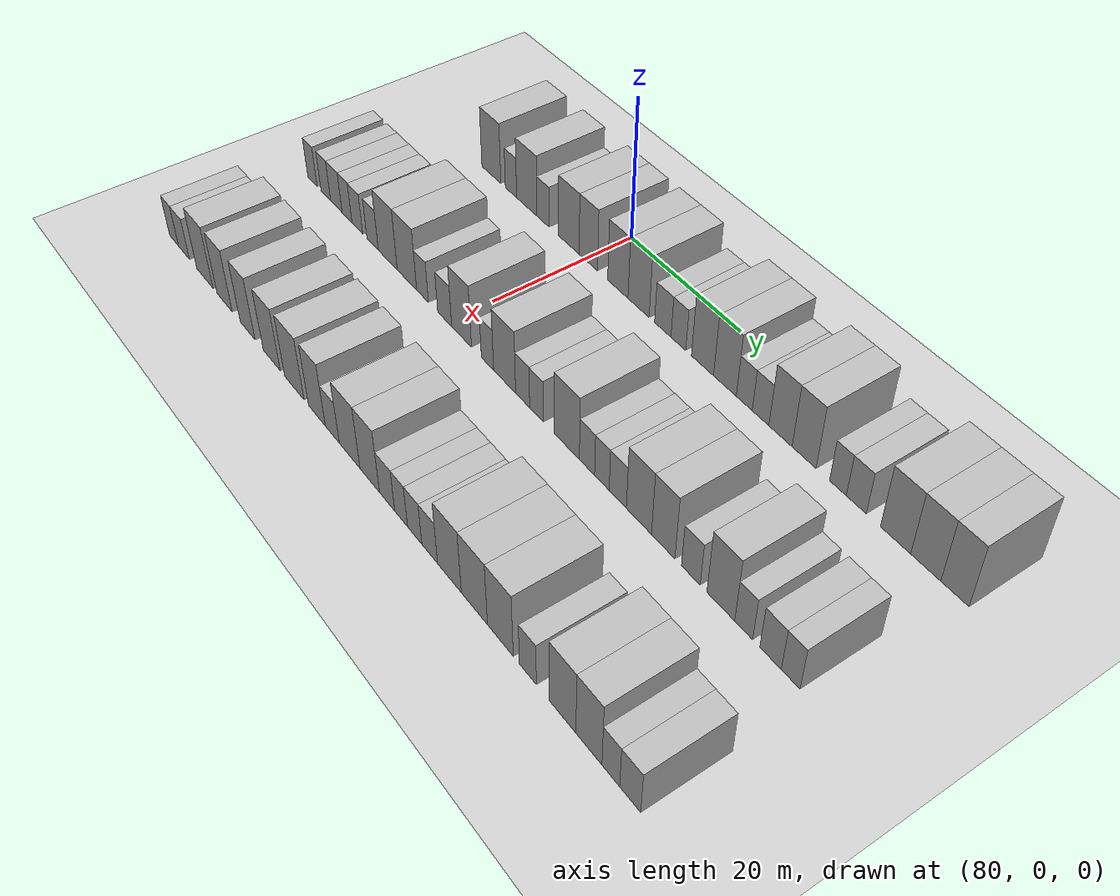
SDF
<sdf version="1.6">
 <world name="default">
  <include>
   <name>ground_plane_2</name>
   <uri>model://HANNAS_ground_plane</uri>
   <pose>100 0 0  0 0 0</pose>
  </include>
  <model name="building_604">
   <static>1</static>
   <pose>82.0000 -20.0142 0 0.000000 0.000000 0.000000</pose>
   <link name="link">
    <pose>0 0 4.50 0 0 0</pose>
    <collision name="collision"><geometry><box><size>10.0000 4.3023 9.0000</size></box></geometry></collision>
    <visual name="visual">
     <cast_shadows>0</cast_shadows>
     <geometry><box><size>10.0000 4.3023 9.0000</size></box></geometry>
     <material>
      <script>
       <uri>model://HANNAS_wall/materials/scripts</uri>
       <uri>model://HANNAS_wall/materials/textures</uri>
       <name>vrc/HANNAS_wall</name>
      </script>
     </material>
    </visual>
   </link>
  </model>
  <model name="building_605">
   <static>1</static>
   <pose>82.0000 -15.6090 0 0.000000 0.000000 0.000000</pose>
   <link name="link">
    <pose>0 0 3.00 0 0 0</pose>
    <collision name="collision"><geometry><box><size>10.0000 2.5079 6.0000</size></box></geometry></collision>
    <visual name="visual">
     <cast_shadows>0</cast_shadows>
     <geometry><box><size>10.0000 2.5079 6.0000</size></box></geometry>
     <material>
      <script>
       <uri>model://HANNAS_wall/materials/scripts</uri>
       <uri>model://HANNAS_wall/materials/textures</uri>
       <name>vrc/HANNAS_wall</name>
      </script>
     </material>
    </visual>
   </link>
  </model>
  <model name="building_606">
   <static>1</static>
   <pose>82.0000 -12.1542 0 0.000000 0.000000 0.000000</pose>
   <link name="link">
    <pose>0 0 4.50 0 0 0</pose>
    <collision name="collision"><geometry><box><size>10.0000 4.4016 9.0000</size></box></geometry></collision>
    <visual name="visual">
     <cast_shadows>0</cast_shadows>
     <geometry><box><size>10.0000 4.4016 9.0000</size></box></geometry>
     <material>
      <script>
       <uri>model://HANNAS_wall/materials/scripts</uri>
       <uri>model://HANNAS_wall/materials/textures</uri>
       <name>vrc/HANNAS_wall</name>
      </script>
     </material>
    </visual>
   </link>
  </model>
  <model name="building_607">
   <static>1</static>
   <pose>82.0000 -8.6694 0 0.000000 0.000000 0.000000</pose>
   <link name="link">
    <pose>0 0 3.00 0 0 0</pose>
    <collision name="collision"><geometry><box><size>10.0000 2.5681 6.0000</size></box></geometry></collision>
    <visual name="visual">
     <cast_shadows>0</cast_shadows>
     <geometry><box><size>10.0000 2.5681 6.0000</size></box></geometry>
     <material>
      <script>
       <uri>model://HANNAS_wall/materials/scripts</uri>
       <uri>model://HANNAS_wall/materials/textures</uri>
       <name>vrc/HANNAS_wall</name>
      </script>
     </material>
    </visual>
   </link>
  </model>
  <model name="building_608">
   <static>1</static>
   <pose>82.0000 -3.2943 0 0.000000 0.000000 0.000000</pose>
   <link name="link">
    <pose>0 0 4.50 0 0 0</pose>
    <collision name="collision"><geometry><box><size>10.0000 4.1821 9.0000</size></box></geometry></collision>
    <visual name="visual">
     <cast_shadows>0</cast_shadows>
     <geometry><box><size>10.0000 4.1821 9.0000</size></box></geometry>
     <material>
      <script>
       <uri>model://HANNAS_wall/materials/scripts</uri>
       <uri>model://HANNAS_wall/materials/textures</uri>
       <name>vrc/HANNAS_wall</name>
      </script>
     </material>
    </visual>
   </link>
  </model>
  <model name="building_609">
   <static>1</static>
   <pose>82.0000 0.6247 0 0.000000 0.000000 0.000000</pose>
   <link name="link">
    <pose>0 0 4.50 0 0 0</pose>
    <collision name="collision"><geometry><box><size>10.0000 3.6558 9.0000</size></box></geometry></collision>
    <visual name="visual">
     <cast_shadows>0</cast_shadows>
     <geometry><box><size>10.0000 3.6558 9.0000</size></box></geometry>
     <material>
      <script>
       <uri>model://HANNAS_wall/materials/scripts</uri>
       <uri>model://HANNAS_wall/materials/textures</uri>
       <name>vrc/HANNAS_wall</name>
      </script>
     </material>
    </visual>
   </link>
  </model>
  <model name="building_610">
   <static>1</static>
   <pose>82.0000 6.4004 0 0.000000 0.000000 0.000000</pose>
   <link name="link">
    <pose>0 0 4.50 0 0 0</pose>
    <collision name="collision"><geometry><box><size>10.0000 3.8955 9.0000</size></box></geometry></collision>
    <visual name="visual">
     <cast_shadows>0</cast_shadows>
     <geometry><box><size>10.0000 3.8955 9.0000</size></box></geometry>
     <material>
      <script>
       <uri>model://HANNAS_wall/materials/scripts</uri>
       <uri>model://HANNAS_wall/materials/textures</uri>
       <name>vrc/HANNAS_wall</name>
      </script>
     </material>
    </visual>
   </link>
  </model>
  <model name="building_611">
   <static>1</static>
   <pose>82.0000 10.3251 0 0.000000 0.000000 0.000000</pose>
   <link name="link">
    <pose>0 0 4.50 0 0 0</pose>
    <collision name="collision"><geometry><box><size>10.0000 3.9539 9.0000</size></box></geometry></collision>
    <visual name="visual">
     <cast_shadows>0</cast_shadows>
     <geometry><box><size>10.0000 3.9539 9.0000</size></box></geometry>
     <material>
      <script>
       <uri>model://HANNAS_wall/materials/scripts</uri>
       <uri>model://HANNAS_wall/materials/textures</uri>
       <name>vrc/HANNAS_wall</name>
      </script>
     </material>
    </visual>
   </link>
  </model>
  <model name="building_612">
   <static>1</static>
   <pose>82.0000 14.7851 0 0.000000 0.000000 0.000000</pose>
   <link name="link">
    <pose>0 0 3.00 0 0 0</pose>
    <collision name="collision"><geometry><box><size>10.0000 2.9661 6.0000</size></box></geometry></collision>
    <visual name="visual">
     <cast_shadows>0</cast_shadows>
     <geometry><box><size>10.0000 2.9661 6.0000</size></box></geometry>
     <material>
      <script>
       <uri>model://HANNAS_wall/materials/scripts</uri>
       <uri>model://HANNAS_wall/materials/textures</uri>
       <name>vrc/HANNAS_wall</name>
      </script>
     </material>
    </visual>
   </link>
  </model>
  <model name="building_613">
   <static>1</static>
   <pose>82.0000 17.5795 0 0.000000 0.000000 0.000000</pose>
   <link name="link">
    <pose>0 0 3.00 0 0 0</pose>
    <collision name="collision"><geometry><box><size>10.0000 2.6227 6.0000</size></box></geometry></collision>
    <visual name="visual">
     <cast_shadows>0</cast_shadows>
     <geometry><box><size>10.0000 2.6227 6.0000</size></box></geometry>
     <material>
      <script>
       <uri>model://HANNAS_wall/materials/scripts</uri>
       <uri>model://HANNAS_wall/materials/textures</uri>
       <name>vrc/HANNAS_wall</name>
      </script>
     </material>
    </visual>
   </link>
  </model>
  <model name="building_614">
   <static>1</static>
   <pose>82.0000 21.7921 0 0.000000 0.000000 0.000000</pose>
   <link name="link">
    <pose>0 0 4.50 0 0 0</pose>
    <collision name="collision"><geometry><box><size>10.0000 3.8025 9.0000</size></box></geometry></collision>
    <visual name="visual">
     <cast_shadows>0</cast_shadows>
     <geometry><box><size>10.0000 3.8025 9.0000</size></box></geometry>
     <material>
      <script>
       <uri>model://HANNAS_wall/materials/scripts</uri>
       <uri>model://HANNAS_wall/materials/textures</uri>
       <name>vrc/HANNAS_wall</name>
      </script>
     </material>
    </visual>
   </link>
  </model>
  <model name="building_615">
   <static>1</static>
   <pose>82.0000 25.6045 0 0.000000 0.000000 0.000000</pose>
   <link name="link">
    <pose>0 0 4.50 0 0 0</pose>
    <collision name="collision"><geometry><box><size>10.0000 3.8221 9.0000</size></box></geometry></collision>
    <visual name="visual">
     <cast_shadows>0</cast_shadows>
     <geometry><box><size>10.0000 3.8221 9.0000</size></box></geometry>
     <material>
      <script>
       <uri>model://HANNAS_wall/materials/scripts</uri>
       <uri>model://HANNAS_wall/materials/textures</uri>
       <name>vrc/HANNAS_wall</name>
      </script>
     </material>
    </visual>
   </link>
  </model>
  <model name="building_616">
   <static>1</static>
   <pose>82.0000 28.8261 0 0.000000 0.000000 0.000000</pose>
   <link name="link">
    <pose>0 0 3.00 0 0 0</pose>
    <collision name="collision"><geometry><box><size>10.0000 2.6213 6.0000</size></box></geometry></collision>
    <visual name="visual">
     <cast_shadows>0</cast_shadows>
     <geometry><box><size>10.0000 2.6213 6.0000</size></box></geometry>
     <material>
      <script>
       <uri>model://HANNAS_wall/materials/scripts</uri>
       <uri>model://HANNAS_wall/materials/textures</uri>
       <name>vrc/HANNAS_wall</name>
      </script>
     </material>
    </visual>
   </link>
  </model>
  <model name="building_617">
   <static>1</static>
   <pose>82.0000 31.4690 0 0.000000 0.000000 0.000000</pose>
   <link name="link">
    <pose>0 0 3.00 0 0 0</pose>
    <collision name="collision"><geometry><box><size>10.0000 2.6644 6.0000</size></box></geometry></collision>
    <visual name="visual">
     <cast_shadows>0</cast_shadows>
     <geometry><box><size>10.0000 2.6644 6.0000</size></box></geometry>
     <material>
      <script>
       <uri>model://HANNAS_wall/materials/scripts</uri>
       <uri>model://HANNAS_wall/materials/textures</uri>
       <name>vrc/HANNAS_wall</name>
      </script>
     </material>
    </visual>
   </link>
  </model>
  <model name="building_618">
   <static>1</static>
   <pose>82.0000 34.6271 0 0.000000 0.000000 0.000000</pose>
   <link name="link">
    <pose>0 0 4.50 0 0 0</pose>
    <collision name="collision"><geometry><box><size>10.0000 3.6517 9.0000</size></box></geometry></collision>
    <visual name="visual">
     <cast_shadows>0</cast_shadows>
     <geometry><box><size>10.0000 3.6517 9.0000</size></box></geometry>
     <material>
      <script>
       <uri>model://HANNAS_wall/materials/scripts</uri>
       <uri>model://HANNAS_wall/materials/textures</uri>
       <name>vrc/HANNAS_wall</name>
      </script>
     </material>
    </visual>
   </link>
  </model>
  <model name="building_619">
   <static>1</static>
   <pose>82.0000 38.2911 0 0.000000 0.000000 0.000000</pose>
   <link name="link">
    <pose>0 0 4.50 0 0 0</pose>
    <collision name="collision"><geometry><box><size>10.0000 3.6763 9.0000</size></box></geometry></collision>
    <visual name="visual">
     <cast_shadows>0</cast_shadows>
     <geometry><box><size>10.0000 3.6763 9.0000</size></box></geometry>
     <material>
      <script>
       <uri>model://HANNAS_wall/materials/scripts</uri>
       <uri>model://HANNAS_wall/materials/textures</uri>
       <name>vrc/HANNAS_wall</name>
      </script>
     </material>
    </visual>
   </link>
  </model>
  <model name="building_620">
   <static>1</static>
   <pose>82.0000 43.3612 0 0.000000 0.000000 0.000000</pose>
   <link name="link">
    <pose>0 0 3.00 0 0 0</pose>
    <collision name="collision"><geometry><box><size>10.0000 2.4638 6.0000</size></box></geometry></collision>
    <visual name="visual">
     <cast_shadows>0</cast_shadows>
     <geometry><box><size>10.0000 2.4638 6.0000</size></box></geometry>
     <material>
      <script>
       <uri>model://HANNAS_wall/materials/scripts</uri>
       <uri>model://HANNAS_wall/materials/textures</uri>
       <name>vrc/HANNAS_wall</name>
      </script>
     </material>
    </visual>
   </link>
  </model>
  <model name="building_621">
   <static>1</static>
   <pose>82.0000 46.0328 0 0.000000 0.000000 0.000000</pose>
   <link name="link">
    <pose>0 0 3.00 0 0 0</pose>
    <collision name="collision"><geometry><box><size>10.0000 2.8796 6.0000</size></box></geometry></collision>
    <visual name="visual">
     <cast_shadows>0</cast_shadows>
     <geometry><box><size>10.0000 2.8796 6.0000</size></box></geometry>
     <material>
      <script>
       <uri>model://HANNAS_wall/materials/scripts</uri>
       <uri>model://HANNAS_wall/materials/textures</uri>
       <name>vrc/HANNAS_wall</name>
      </script>
     </material>
    </visual>
   </link>
  </model>
  <model name="building_622">
   <static>1</static>
   <pose>82.0000 51.5520 0 0.000000 0.000000 0.000000</pose>
   <link name="link">
    <pose>0 0 4.50 0 0 0</pose>
    <collision name="collision"><geometry><box><size>10.0000 4.1588 9.0000</size></box></geometry></collision>
    <visual name="visual">
     <cast_shadows>0</cast_shadows>
     <geometry><box><size>10.0000 4.1588 9.0000</size></box></geometry>
     <material>
      <script>
       <uri>model://HANNAS_wall/materials/scripts</uri>
       <uri>model://HANNAS_wall/materials/textures</uri>
       <name>vrc/HANNAS_wall</name>
      </script>
     </material>
    </visual>
   </link>
  </model>
  <model name="building_623">
   <static>1</static>
   <pose>82.0000 55.6407 0 0.000000 0.000000 0.000000</pose>
   <link name="link">
    <pose>0 0 4.50 0 0 0</pose>
    <collision name="collision"><geometry><box><size>10.0000 4.0185 9.0000</size></box></geometry></collision>
    <visual name="visual">
     <cast_shadows>0</cast_shadows>
     <geometry><box><size>10.0000 4.0185 9.0000</size></box></geometry>
     <material>
      <script>
       <uri>model://HANNAS_wall/materials/scripts</uri>
       <uri>model://HANNAS_wall/materials/textures</uri>
       <name>vrc/HANNAS_wall</name>
      </script>
     </material>
    </visual>
   </link>
  </model>
  <model name="building_624">
   <static>1</static>
   <pose>82.0000 59.4782 0 0.000000 0.000000 0.000000</pose>
   <link name="link">
    <pose>0 0 4.50 0 0 0</pose>
    <collision name="collision"><geometry><box><size>10.0000 3.6566 9.0000</size></box></geometry></collision>
    <visual name="visual">
     <cast_shadows>0</cast_shadows>
     <geometry><box><size>10.0000 3.6566 9.0000</size></box></geometry>
     <material>
      <script>
       <uri>model://HANNAS_wall/materials/scripts</uri>
       <uri>model://HANNAS_wall/materials/textures</uri>
       <name>vrc/HANNAS_wall</name>
      </script>
     </material>
    </visual>
   </link>
  </model>
  <model name="building_777">
   <static>1</static>
   <pose>101.0000 -31.6966 0 0.000000 0.000000 0.000000</pose>
   <link name="link">
    <pose>0 0 3.00 0 0 0</pose>
    <collision name="collision"><geometry><box><size>10.0000 2.4037 6.0000</size></box></geometry></collision>
    <visual name="visual">
     <cast_shadows>0</cast_shadows>
     <geometry><box><size>10.0000 2.4037 6.0000</size></box></geometry>
     <material>
      <script>
       <uri>model://HANNAS_wall/materials/scripts</uri>
       <uri>model://HANNAS_wall/materials/textures</uri>
       <name>vrc/HANNAS_wall</name>
      </script>
     </material>
    </visual>
   </link>
  </model>
  <model name="building_778">
   <static>1</static>
   <pose>101.0000 -28.2840 0 0.000000 0.000000 0.000000</pose>
   <link name="link">
    <pose>0 0 3.00 0 0 0</pose>
    <collision name="collision"><geometry><box><size>10.0000 2.4216 6.0000</size></box></geometry></collision>
    <visual name="visual">
     <cast_shadows>0</cast_shadows>
     <geometry><box><size>10.0000 2.4216 6.0000</size></box></geometry>
     <material>
      <script>
       <uri>model://HANNAS_wall/materials/scripts</uri>
       <uri>model://HANNAS_wall/materials/textures</uri>
       <name>vrc/HANNAS_wall</name>
      </script>
     </material>
    </visual>
   </link>
  </model>
  <model name="building_779">
   <static>1</static>
   <pose>101.0000 -25.6420 0 0.000000 0.000000 0.000000</pose>
   <link name="link">
    <pose>0 0 3.00 0 0 0</pose>
    <collision name="collision"><geometry><box><size>10.0000 2.8623 6.0000</size></box></geometry></collision>
    <visual name="visual">
     <cast_shadows>0</cast_shadows>
     <geometry><box><size>10.0000 2.8623 6.0000</size></box></geometry>
     <material>
      <script>
       <uri>model://HANNAS_wall/materials/scripts</uri>
       <uri>model://HANNAS_wall/materials/textures</uri>
       <name>vrc/HANNAS_wall</name>
      </script>
     </material>
    </visual>
   </link>
  </model>
  <model name="building_780">
   <static>1</static>
   <pose>101.0000 -22.9965 0 0.000000 0.000000 0.000000</pose>
   <link name="link">
    <pose>0 0 3.00 0 0 0</pose>
    <collision name="collision"><geometry><box><size>10.0000 2.4287 6.0000</size></box></geometry></collision>
    <visual name="visual">
     <cast_shadows>0</cast_shadows>
     <geometry><box><size>10.0000 2.4287 6.0000</size></box></geometry>
     <material>
      <script>
       <uri>model://HANNAS_wall/materials/scripts</uri>
       <uri>model://HANNAS_wall/materials/textures</uri>
       <name>vrc/HANNAS_wall</name>
      </script>
     </material>
    </visual>
   </link>
  </model>
  <model name="building_781">
   <static>1</static>
   <pose>101.0000 -20.4840 0 0.000000 0.000000 0.000000</pose>
   <link name="link">
    <pose>0 0 3.00 0 0 0</pose>
    <collision name="collision"><geometry><box><size>10.0000 2.5963 6.0000</size></box></geometry></collision>
    <visual name="visual">
     <cast_shadows>0</cast_shadows>
     <geometry><box><size>10.0000 2.5963 6.0000</size></box></geometry>
     <material>
      <script>
       <uri>model://HANNAS_wall/materials/scripts</uri>
       <uri>model://HANNAS_wall/materials/textures</uri>
       <name>vrc/HANNAS_wall</name>
      </script>
     </material>
    </visual>
   </link>
  </model>
  <model name="building_782">
   <static>1</static>
   <pose>101.0000 -16.8445 0 0.000000 0.000000 0.000000</pose>
   <link name="link">
    <pose>0 0 3.00 0 0 0</pose>
    <collision name="collision"><geometry><box><size>10.0000 2.6827 6.0000</size></box></geometry></collision>
    <visual name="visual">
     <cast_shadows>0</cast_shadows>
     <geometry><box><size>10.0000 2.6827 6.0000</size></box></geometry>
     <material>
      <script>
       <uri>model://HANNAS_wall/materials/scripts</uri>
       <uri>model://HANNAS_wall/materials/textures</uri>
       <name>vrc/HANNAS_wall</name>
      </script>
     </material>
    </visual>
   </link>
  </model>
  <model name="building_783">
   <static>1</static>
   <pose>101.0000 -13.3282 0 0.000000 0.000000 0.000000</pose>
   <link name="link">
    <pose>0 0 4.50 0 0 0</pose>
    <collision name="collision"><geometry><box><size>10.0000 4.3497 9.0000</size></box></geometry></collision>
    <visual name="visual">
     <cast_shadows>0</cast_shadows>
     <geometry><box><size>10.0000 4.3497 9.0000</size></box></geometry>
     <material>
      <script>
       <uri>model://HANNAS_wall/materials/scripts</uri>
       <uri>model://HANNAS_wall/materials/textures</uri>
       <name>vrc/HANNAS_wall</name>
      </script>
     </material>
    </visual>
   </link>
  </model>
  <model name="building_784">
   <static>1</static>
   <pose>101.0000 -8.9768 0 0.000000 0.000000 0.000000</pose>
   <link name="link">
    <pose>0 0 4.50 0 0 0</pose>
    <collision name="collision"><geometry><box><size>10.0000 4.3532 9.0000</size></box></geometry></collision>
    <visual name="visual">
     <cast_shadows>0</cast_shadows>
     <geometry><box><size>10.0000 4.3532 9.0000</size></box></geometry>
     <material>
      <script>
       <uri>model://HANNAS_wall/materials/scripts</uri>
       <uri>model://HANNAS_wall/materials/textures</uri>
       <name>vrc/HANNAS_wall</name>
      </script>
     </material>
    </visual>
   </link>
  </model>
  <model name="building_785">
   <static>1</static>
   <pose>101.0000 -5.5197 0 0.000000 0.000000 0.000000</pose>
   <link name="link">
    <pose>0 0 3.00 0 0 0</pose>
    <collision name="collision"><geometry><box><size>10.0000 2.5610 6.0000</size></box></geometry></collision>
    <visual name="visual">
     <cast_shadows>0</cast_shadows>
     <geometry><box><size>10.0000 2.5610 6.0000</size></box></geometry>
     <material>
      <script>
       <uri>model://HANNAS_wall/materials/scripts</uri>
       <uri>model://HANNAS_wall/materials/textures</uri>
       <name>vrc/HANNAS_wall</name>
      </script>
     </material>
    </visual>
   </link>
  </model>
  <model name="building_786">
   <static>1</static>
   <pose>101.0000 -0.7593 0 0.000000 0.000000 0.000000</pose>
   <link name="link">
    <pose>0 0 3.00 0 0 0</pose>
    <collision name="collision"><geometry><box><size>10.0000 2.9598 6.0000</size></box></geometry></collision>
    <visual name="visual">
     <cast_shadows>0</cast_shadows>
     <geometry><box><size>10.0000 2.9598 6.0000</size></box></geometry>
     <material>
      <script>
       <uri>model://HANNAS_wall/materials/scripts</uri>
       <uri>model://HANNAS_wall/materials/textures</uri>
       <name>vrc/HANNAS_wall</name>
      </script>
     </material>
    </visual>
   </link>
  </model>
  <model name="building_787">
   <static>1</static>
   <pose>101.0000 2.7613 0 0.000000 0.000000 0.000000</pose>
   <link name="link">
    <pose>0 0 4.50 0 0 0</pose>
    <collision name="collision"><geometry><box><size>10.0000 4.0813 9.0000</size></box></geometry></collision>
    <visual name="visual">
     <cast_shadows>0</cast_shadows>
     <geometry><box><size>10.0000 4.0813 9.0000</size></box></geometry>
     <material>
      <script>
       <uri>model://HANNAS_wall/materials/scripts</uri>
       <uri>model://HANNAS_wall/materials/textures</uri>
       <name>vrc/HANNAS_wall</name>
      </script>
     </material>
    </visual>
   </link>
  </model>
  <model name="building_788">
   <static>1</static>
   <pose>101.0000 8.0213 0 0.000000 0.000000 0.000000</pose>
   <link name="link">
    <pose>0 0 3.00 0 0 0</pose>
    <collision name="collision"><geometry><box><size>10.0000 2.4387 6.0000</size></box></geometry></collision>
    <visual name="visual">
     <cast_shadows>0</cast_shadows>
     <geometry><box><size>10.0000 2.4387 6.0000</size></box></geometry>
     <material>
      <script>
       <uri>model://HANNAS_wall/materials/scripts</uri>
       <uri>model://HANNAS_wall/materials/textures</uri>
       <name>vrc/HANNAS_wall</name>
      </script>
     </material>
    </visual>
   </link>
  </model>
  <model name="building_789">
   <static>1</static>
   <pose>101.0000 11.3814 0 0.000000 0.000000 0.000000</pose>
   <link name="link">
    <pose>0 0 4.50 0 0 0</pose>
    <collision name="collision"><geometry><box><size>10.0000 4.2816 9.0000</size></box></geometry></collision>
    <visual name="visual">
     <cast_shadows>0</cast_shadows>
     <geometry><box><size>10.0000 4.2816 9.0000</size></box></geometry>
     <material>
      <script>
       <uri>model://HANNAS_wall/materials/scripts</uri>
       <uri>model://HANNAS_wall/materials/textures</uri>
       <name>vrc/HANNAS_wall</name>
      </script>
     </material>
    </visual>
   </link>
  </model>
  <model name="building_790">
   <static>1</static>
   <pose>101.0000 14.8483 0 0.000000 0.000000 0.000000</pose>
   <link name="link">
    <pose>0 0 3.00 0 0 0</pose>
    <collision name="collision"><geometry><box><size>10.0000 2.6521 6.0000</size></box></geometry></collision>
    <visual name="visual">
     <cast_shadows>0</cast_shadows>
     <geometry><box><size>10.0000 2.6521 6.0000</size></box></geometry>
     <material>
      <script>
       <uri>model://HANNAS_wall/materials/scripts</uri>
       <uri>model://HANNAS_wall/materials/textures</uri>
       <name>vrc/HANNAS_wall</name>
      </script>
     </material>
    </visual>
   </link>
  </model>
  <model name="building_791">
   <static>1</static>
   <pose>101.0000 17.4424 0 0.000000 0.000000 0.000000</pose>
   <link name="link">
    <pose>0 0 3.00 0 0 0</pose>
    <collision name="collision"><geometry><box><size>10.0000 2.5361 6.0000</size></box></geometry></collision>
    <visual name="visual">
     <cast_shadows>0</cast_shadows>
     <geometry><box><size>10.0000 2.5361 6.0000</size></box></geometry>
     <material>
      <script>
       <uri>model://HANNAS_wall/materials/scripts</uri>
       <uri>model://HANNAS_wall/materials/textures</uri>
       <name>vrc/HANNAS_wall</name>
      </script>
     </material>
    </visual>
   </link>
  </model>
  <model name="building_792">
   <static>1</static>
   <pose>101.0000 22.9478 0 0.000000 0.000000 0.000000</pose>
   <link name="link">
    <pose>0 0 4.50 0 0 0</pose>
    <collision name="collision"><geometry><box><size>10.0000 4.4748 9.0000</size></box></geometry></collision>
    <visual name="visual">
     <cast_shadows>0</cast_shadows>
     <geometry><box><size>10.0000 4.4748 9.0000</size></box></geometry>
     <material>
      <script>
       <uri>model://HANNAS_wall/materials/scripts</uri>
       <uri>model://HANNAS_wall/materials/textures</uri>
       <name>vrc/HANNAS_wall</name>
      </script>
     </material>
    </visual>
   </link>
  </model>
  <model name="building_793">
   <static>1</static>
   <pose>101.0000 26.5019 0 0.000000 0.000000 0.000000</pose>
   <link name="link">
    <pose>0 0 3.00 0 0 0</pose>
    <collision name="collision"><geometry><box><size>10.0000 2.6334 6.0000</size></box></geometry></collision>
    <visual name="visual">
     <cast_shadows>0</cast_shadows>
     <geometry><box><size>10.0000 2.6334 6.0000</size></box></geometry>
     <material>
      <script>
       <uri>model://HANNAS_wall/materials/scripts</uri>
       <uri>model://HANNAS_wall/materials/textures</uri>
       <name>vrc/HANNAS_wall</name>
      </script>
     </material>
    </visual>
   </link>
  </model>
  <model name="building_794">
   <static>1</static>
   <pose>101.0000 29.0610 0 0.000000 0.000000 0.000000</pose>
   <link name="link">
    <pose>0 0 3.00 0 0 0</pose>
    <collision name="collision"><geometry><box><size>10.0000 2.4846 6.0000</size></box></geometry></collision>
    <visual name="visual">
     <cast_shadows>0</cast_shadows>
     <geometry><box><size>10.0000 2.4846 6.0000</size></box></geometry>
     <material>
      <script>
       <uri>model://HANNAS_wall/materials/scripts</uri>
       <uri>model://HANNAS_wall/materials/textures</uri>
       <name>vrc/HANNAS_wall</name>
      </script>
     </material>
    </visual>
   </link>
  </model>
  <model name="building_795">
   <static>1</static>
   <pose>101.0000 31.7318 0 0.000000 0.000000 0.000000</pose>
   <link name="link">
    <pose>0 0 3.00 0 0 0</pose>
    <collision name="collision"><geometry><box><size>10.0000 2.8570 6.0000</size></box></geometry></collision>
    <visual name="visual">
     <cast_shadows>0</cast_shadows>
     <geometry><box><size>10.0000 2.8570 6.0000</size></box></geometry>
     <material>
      <script>
       <uri>model://HANNAS_wall/materials/scripts</uri>
       <uri>model://HANNAS_wall/materials/textures</uri>
       <name>vrc/HANNAS_wall</name>
      </script>
     </material>
    </visual>
   </link>
  </model>
  <model name="building_796">
   <static>1</static>
   <pose>101.0000 35.2011 0 0.000000 0.000000 0.000000</pose>
   <link name="link">
    <pose>0 0 4.50 0 0 0</pose>
    <collision name="collision"><geometry><box><size>10.0000 4.0816 9.0000</size></box></geometry></collision>
    <visual name="visual">
     <cast_shadows>0</cast_shadows>
     <geometry><box><size>10.0000 4.0816 9.0000</size></box></geometry>
     <material>
      <script>
       <uri>model://HANNAS_wall/materials/scripts</uri>
       <uri>model://HANNAS_wall/materials/textures</uri>
       <name>vrc/HANNAS_wall</name>
      </script>
     </material>
    </visual>
   </link>
  </model>
  <model name="building_797">
   <static>1</static>
   <pose>101.0000 39.0906 0 0.000000 0.000000 0.000000</pose>
   <link name="link">
    <pose>0 0 4.50 0 0 0</pose>
    <collision name="collision"><geometry><box><size>10.0000 3.6974 9.0000</size></box></geometry></collision>
    <visual name="visual">
     <cast_shadows>0</cast_shadows>
     <geometry><box><size>10.0000 3.6974 9.0000</size></box></geometry>
     <material>
      <script>
       <uri>model://HANNAS_wall/materials/scripts</uri>
       <uri>model://HANNAS_wall/materials/textures</uri>
       <name>vrc/HANNAS_wall</name>
      </script>
     </material>
    </visual>
   </link>
  </model>
  <model name="building_798">
   <static>1</static>
   <pose>101.0000 43.3651 0 0.000000 0.000000 0.000000</pose>
   <link name="link">
    <pose>0 0 3.00 0 0 0</pose>
    <collision name="collision"><geometry><box><size>10.0000 2.8517 6.0000</size></box></geometry></collision>
    <visual name="visual">
     <cast_shadows>0</cast_shadows>
     <geometry><box><size>10.0000 2.8517 6.0000</size></box></geometry>
     <material>
      <script>
       <uri>model://HANNAS_wall/materials/scripts</uri>
       <uri>model://HANNAS_wall/materials/textures</uri>
       <name>vrc/HANNAS_wall</name>
      </script>
     </material>
    </visual>
   </link>
  </model>
  <model name="building_799">
   <static>1</static>
   <pose>101.0000 47.8272 0 0.000000 0.000000 0.000000</pose>
   <link name="link">
    <pose>0 0 4.50 0 0 0</pose>
    <collision name="collision"><geometry><box><size>10.0000 4.0725 9.0000</size></box></geometry></collision>
    <visual name="visual">
     <cast_shadows>0</cast_shadows>
     <geometry><box><size>10.0000 4.0725 9.0000</size></box></geometry>
     <material>
      <script>
       <uri>model://HANNAS_wall/materials/scripts</uri>
       <uri>model://HANNAS_wall/materials/textures</uri>
       <name>vrc/HANNAS_wall</name>
      </script>
     </material>
    </visual>
   </link>
  </model>
  <model name="building_800">
   <static>1</static>
   <pose>101.0000 51.1431 0 0.000000 0.000000 0.000000</pose>
   <link name="link">
    <pose>0 0 3.00 0 0 0</pose>
    <collision name="collision"><geometry><box><size>10.0000 2.5592 6.0000</size></box></geometry></collision>
    <visual name="visual">
     <cast_shadows>0</cast_shadows>
     <geometry><box><size>10.0000 2.5592 6.0000</size></box></geometry>
     <material>
      <script>
       <uri>model://HANNAS_wall/materials/scripts</uri>
       <uri>model://HANNAS_wall/materials/textures</uri>
       <name>vrc/HANNAS_wall</name>
      </script>
     </material>
    </visual>
   </link>
  </model>
  <model name="building_801">
   <static>1</static>
   <pose>101.0000 54.9093 0 0.000000 0.000000 0.000000</pose>
   <link name="link">
    <pose>0 0 3.00 0 0 0</pose>
    <collision name="collision"><geometry><box><size>10.0000 2.9733 6.0000</size></box></geometry></collision>
    <visual name="visual">
     <cast_shadows>0</cast_shadows>
     <geometry><box><size>10.0000 2.9733 6.0000</size></box></geometry>
     <material>
      <script>
       <uri>model://HANNAS_wall/materials/scripts</uri>
       <uri>model://HANNAS_wall/materials/textures</uri>
       <name>vrc/HANNAS_wall</name>
      </script>
     </material>
    </visual>
   </link>
  </model>
  <model name="building_802">
   <static>1</static>
   <pose>101.0000 57.6624 0 0.000000 0.000000 0.000000</pose>
   <link name="link">
    <pose>0 0 3.00 0 0 0</pose>
    <collision name="collision"><geometry><box><size>10.0000 2.5329 6.0000</size></box></geometry></collision>
    <visual name="visual">
     <cast_shadows>0</cast_shadows>
     <geometry><box><size>10.0000 2.5329 6.0000</size></box></geometry>
     <material>
      <script>
       <uri>model://HANNAS_wall/materials/scripts</uri>
       <uri>model://HANNAS_wall/materials/textures</uri>
       <name>vrc/HANNAS_wall</name>
      </script>
     </material>
    </visual>
   </link>
  </model>
  <model name="building_961">
   <static>1</static>
   <pose>120.0000 -31.0955 0 0.000000 0.000000 0.000000</pose>
   <link name="link">
    <pose>0 0 3.00 0 0 0</pose>
    <collision name="collision"><geometry><box><size>10.0000 2.5001 6.0000</size></box></geometry></collision>
    <visual name="visual">
     <cast_shadows>0</cast_shadows>
     <geometry><box><size>10.0000 2.5001 6.0000</size></box></geometry>
     <material>
      <script>
       <uri>model://HANNAS_wall/materials/scripts</uri>
       <uri>model://HANNAS_wall/materials/textures</uri>
       <name>vrc/HANNAS_wall</name>
      </script>
     </material>
    </visual>
   </link>
  </model>
  <model name="building_962">
   <static>1</static>
   <pose>120.0000 -28.3582 0 0.000000 0.000000 0.000000</pose>
   <link name="link">
    <pose>0 0 3.00 0 0 0</pose>
    <collision name="collision"><geometry><box><size>10.0000 2.9744 6.0000</size></box></geometry></collision>
    <visual name="visual">
     <cast_shadows>0</cast_shadows>
     <geometry><box><size>10.0000 2.9744 6.0000</size></box></geometry>
     <material>
      <script>
       <uri>model://HANNAS_wall/materials/scripts</uri>
       <uri>model://HANNAS_wall/materials/textures</uri>
       <name>vrc/HANNAS_wall</name>
      </script>
     </material>
    </visual>
   </link>
  </model>
  <model name="building_963">
   <static>1</static>
   <pose>120.0000 -22.7228 0 0.000000 0.000000 0.000000</pose>
   <link name="link">
    <pose>0 0 4.50 0 0 0</pose>
    <collision name="collision"><geometry><box><size>10.0000 4.2964 9.0000</size></box></geometry></collision>
    <visual name="visual">
     <cast_shadows>0</cast_shadows>
     <geometry><box><size>10.0000 4.2964 9.0000</size></box></geometry>
     <material>
      <script>
       <uri>model://HANNAS_wall/materials/scripts</uri>
       <uri>model://HANNAS_wall/materials/textures</uri>
       <name>vrc/HANNAS_wall</name>
      </script>
     </material>
    </visual>
   </link>
  </model>
  <model name="building_964">
   <static>1</static>
   <pose>120.0000 -17.6307 0 0.000000 0.000000 0.000000</pose>
   <link name="link">
    <pose>0 0 4.50 0 0 0</pose>
    <collision name="collision"><geometry><box><size>10.0000 3.8878 9.0000</size></box></geometry></collision>
    <visual name="visual">
     <cast_shadows>0</cast_shadows>
     <geometry><box><size>10.0000 3.8878 9.0000</size></box></geometry>
     <material>
      <script>
       <uri>model://HANNAS_wall/materials/scripts</uri>
       <uri>model://HANNAS_wall/materials/textures</uri>
       <name>vrc/HANNAS_wall</name>
      </script>
     </material>
    </visual>
   </link>
  </model>
  <model name="building_965">
   <static>1</static>
   <pose>120.0000 -11.8755 0 0.000000 0.000000 0.000000</pose>
   <link name="link">
    <pose>0 0 4.50 0 0 0</pose>
    <collision name="collision"><geometry><box><size>10.0000 3.6226 9.0000</size></box></geometry></collision>
    <visual name="visual">
     <cast_shadows>0</cast_shadows>
     <geometry><box><size>10.0000 3.6226 9.0000</size></box></geometry>
     <material>
      <script>
       <uri>model://HANNAS_wall/materials/scripts</uri>
       <uri>model://HANNAS_wall/materials/textures</uri>
       <name>vrc/HANNAS_wall</name>
      </script>
     </material>
    </visual>
   </link>
  </model>
  <model name="building_966">
   <static>1</static>
   <pose>120.0000 -6.0587 0 0.000000 0.000000 0.000000</pose>
   <link name="link">
    <pose>0 0 4.50 0 0 0</pose>
    <collision name="collision"><geometry><box><size>10.0000 4.0110 9.0000</size></box></geometry></collision>
    <visual name="visual">
     <cast_shadows>0</cast_shadows>
     <geometry><box><size>10.0000 4.0110 9.0000</size></box></geometry>
     <material>
      <script>
       <uri>model://HANNAS_wall/materials/scripts</uri>
       <uri>model://HANNAS_wall/materials/textures</uri>
       <name>vrc/HANNAS_wall</name>
      </script>
     </material>
    </visual>
   </link>
  </model>
  <model name="building_967">
   <static>1</static>
   <pose>120.0000 -0.8518 0 0.000000 0.000000 0.000000</pose>
   <link name="link">
    <pose>0 0 4.50 0 0 0</pose>
    <collision name="collision"><geometry><box><size>10.0000 4.4028 9.0000</size></box></geometry></collision>
    <visual name="visual">
     <cast_shadows>0</cast_shadows>
     <geometry><box><size>10.0000 4.4028 9.0000</size></box></geometry>
     <material>
      <script>
       <uri>model://HANNAS_wall/materials/scripts</uri>
       <uri>model://HANNAS_wall/materials/textures</uri>
       <name>vrc/HANNAS_wall</name>
      </script>
     </material>
    </visual>
   </link>
  </model>
  <model name="building_968">
   <static>1</static>
   <pose>120.0000 4.1922 0 0.000000 0.000000 0.000000</pose>
   <link name="link">
    <pose>0 0 4.50 0 0 0</pose>
    <collision name="collision"><geometry><box><size>10.0000 3.6852 9.0000</size></box></geometry></collision>
    <visual name="visual">
     <cast_shadows>0</cast_shadows>
     <geometry><box><size>10.0000 3.6852 9.0000</size></box></geometry>
     <material>
      <script>
       <uri>model://HANNAS_wall/materials/scripts</uri>
       <uri>model://HANNAS_wall/materials/textures</uri>
       <name>vrc/HANNAS_wall</name>
      </script>
     </material>
    </visual>
   </link>
  </model>
  <model name="building_969">
   <static>1</static>
   <pose>120.0000 7.5219 0 0.000000 0.000000 0.000000</pose>
   <link name="link">
    <pose>0 0 3.00 0 0 0</pose>
    <collision name="collision"><geometry><box><size>10.0000 2.9741 6.0000</size></box></geometry></collision>
    <visual name="visual">
     <cast_shadows>0</cast_shadows>
     <geometry><box><size>10.0000 2.9741 6.0000</size></box></geometry>
     <material>
      <script>
       <uri>model://HANNAS_wall/materials/scripts</uri>
       <uri>model://HANNAS_wall/materials/textures</uri>
       <name>vrc/HANNAS_wall</name>
      </script>
     </material>
    </visual>
   </link>
  </model>
  <model name="building_970">
   <static>1</static>
   <pose>120.0000 11.1523 0 0.000000 0.000000 0.000000</pose>
   <link name="link">
    <pose>0 0 4.50 0 0 0</pose>
    <collision name="collision"><geometry><box><size>10.0000 4.2866 9.0000</size></box></geometry></collision>
    <visual name="visual">
     <cast_shadows>0</cast_shadows>
     <geometry><box><size>10.0000 4.2866 9.0000</size></box></geometry>
     <material>
      <script>
       <uri>model://HANNAS_wall/materials/scripts</uri>
       <uri>model://HANNAS_wall/materials/textures</uri>
       <name>vrc/HANNAS_wall</name>
      </script>
     </material>
    </visual>
   </link>
  </model>
  <model name="building_971">
   <static>1</static>
   <pose>120.0000 15.2534 0 0.000000 0.000000 0.000000</pose>
   <link name="link">
    <pose>0 0 4.50 0 0 0</pose>
    <collision name="collision"><geometry><box><size>10.0000 3.9158 9.0000</size></box></geometry></collision>
    <visual name="visual">
     <cast_shadows>0</cast_shadows>
     <geometry><box><size>10.0000 3.9158 9.0000</size></box></geometry>
     <material>
      <script>
       <uri>model://HANNAS_wall/materials/scripts</uri>
       <uri>model://HANNAS_wall/materials/textures</uri>
       <name>vrc/HANNAS_wall</name>
      </script>
     </material>
    </visual>
   </link>
  </model>
  <model name="building_972">
   <static>1</static>
   <pose>120.0000 18.7043 0 0.000000 0.000000 0.000000</pose>
   <link name="link">
    <pose>0 0 3.00 0 0 0</pose>
    <collision name="collision"><geometry><box><size>10.0000 2.9860 6.0000</size></box></geometry></collision>
    <visual name="visual">
     <cast_shadows>0</cast_shadows>
     <geometry><box><size>10.0000 2.9860 6.0000</size></box></geometry>
     <material>
      <script>
       <uri>model://HANNAS_wall/materials/scripts</uri>
       <uri>model://HANNAS_wall/materials/textures</uri>
       <name>vrc/HANNAS_wall</name>
      </script>
     </material>
    </visual>
   </link>
  </model>
  <model name="building_973">
   <static>1</static>
   <pose>120.0000 21.4234 0 0.000000 0.000000 0.000000</pose>
   <link name="link">
    <pose>0 0 3.00 0 0 0</pose>
    <collision name="collision"><geometry><box><size>10.0000 2.4522 6.0000</size></box></geometry></collision>
    <visual name="visual">
     <cast_shadows>0</cast_shadows>
     <geometry><box><size>10.0000 2.4522 6.0000</size></box></geometry>
     <material>
      <script>
       <uri>model://HANNAS_wall/materials/scripts</uri>
       <uri>model://HANNAS_wall/materials/textures</uri>
       <name>vrc/HANNAS_wall</name>
      </script>
     </material>
    </visual>
   </link>
  </model>
  <model name="building_974">
   <static>1</static>
   <pose>120.0000 23.9914 0 0.000000 0.000000 0.000000</pose>
   <link name="link">
    <pose>0 0 3.00 0 0 0</pose>
    <collision name="collision"><geometry><box><size>10.0000 2.6837 6.0000</size></box></geometry></collision>
    <visual name="visual">
     <cast_shadows>0</cast_shadows>
     <geometry><box><size>10.0000 2.6837 6.0000</size></box></geometry>
     <material>
      <script>
       <uri>model://HANNAS_wall/materials/scripts</uri>
       <uri>model://HANNAS_wall/materials/textures</uri>
       <name>vrc/HANNAS_wall</name>
      </script>
     </material>
    </visual>
   </link>
  </model>
  <model name="building_975">
   <static>1</static>
   <pose>120.0000 26.7706 0 0.000000 0.000000 0.000000</pose>
   <link name="link">
    <pose>0 0 3.00 0 0 0</pose>
    <collision name="collision"><geometry><box><size>10.0000 2.8746 6.0000</size></box></geometry></collision>
    <visual name="visual">
     <cast_shadows>0</cast_shadows>
     <geometry><box><size>10.0000 2.8746 6.0000</size></box></geometry>
     <material>
      <script>
       <uri>model://HANNAS_wall/materials/scripts</uri>
       <uri>model://HANNAS_wall/materials/textures</uri>
       <name>vrc/HANNAS_wall</name>
      </script>
     </material>
    </visual>
   </link>
  </model>
  <model name="building_976">
   <static>1</static>
   <pose>120.0000 30.3291 0 0.000000 0.000000 0.000000</pose>
   <link name="link">
    <pose>0 0 4.50 0 0 0</pose>
    <collision name="collision"><geometry><box><size>10.0000 4.2425 9.0000</size></box></geometry></collision>
    <visual name="visual">
     <cast_shadows>0</cast_shadows>
     <geometry><box><size>10.0000 4.2425 9.0000</size></box></geometry>
     <material>
      <script>
       <uri>model://HANNAS_wall/materials/scripts</uri>
       <uri>model://HANNAS_wall/materials/textures</uri>
       <name>vrc/HANNAS_wall</name>
      </script>
     </material>
    </visual>
   </link>
  </model>
  <model name="building_977">
   <static>1</static>
   <pose>120.0000 34.7000 0 0.000000 0.000000 0.000000</pose>
   <link name="link">
    <pose>0 0 4.50 0 0 0</pose>
    <collision name="collision"><geometry><box><size>10.0000 4.4994 9.0000</size></box></geometry></collision>
    <visual name="visual">
     <cast_shadows>0</cast_shadows>
     <geometry><box><size>10.0000 4.4994 9.0000</size></box></geometry>
     <material>
      <script>
       <uri>model://HANNAS_wall/materials/scripts</uri>
       <uri>model://HANNAS_wall/materials/textures</uri>
       <name>vrc/HANNAS_wall</name>
      </script>
     </material>
    </visual>
   </link>
  </model>
  <model name="building_978">
   <static>1</static>
   <pose>120.0000 39.0886 0 0.000000 0.000000 0.000000</pose>
   <link name="link">
    <pose>0 0 4.50 0 0 0</pose>
    <collision name="collision"><geometry><box><size>10.0000 4.2777 9.0000</size></box></geometry></collision>
    <visual name="visual">
     <cast_shadows>0</cast_shadows>
     <geometry><box><size>10.0000 4.2777 9.0000</size></box></geometry>
     <material>
      <script>
       <uri>model://HANNAS_wall/materials/scripts</uri>
       <uri>model://HANNAS_wall/materials/textures</uri>
       <name>vrc/HANNAS_wall</name>
      </script>
     </material>
    </visual>
   </link>
  </model>
  <model name="building_979">
   <static>1</static>
   <pose>120.0000 43.5818 0 0.000000 0.000000 0.000000</pose>
   <link name="link">
    <pose>0 0 3.00 0 0 0</pose>
    <collision name="collision"><geometry><box><size>10.0000 2.7086 6.0000</size></box></geometry></collision>
    <visual name="visual">
     <cast_shadows>0</cast_shadows>
     <geometry><box><size>10.0000 2.7086 6.0000</size></box></geometry>
     <material>
      <script>
       <uri>model://HANNAS_wall/materials/scripts</uri>
       <uri>model://HANNAS_wall/materials/textures</uri>
       <name>vrc/HANNAS_wall</name>
      </script>
     </material>
    </visual>
   </link>
  </model>
  <model name="building_980">
   <static>1</static>
   <pose>120.0000 48.9681 0 0.000000 0.000000 0.000000</pose>
   <link name="link">
    <pose>0 0 4.50 0 0 0</pose>
    <collision name="collision"><geometry><box><size>10.0000 4.0640 9.0000</size></box></geometry></collision>
    <visual name="visual">
     <cast_shadows>0</cast_shadows>
     <geometry><box><size>10.0000 4.0640 9.0000</size></box></geometry>
     <material>
      <script>
       <uri>model://HANNAS_wall/materials/scripts</uri>
       <uri>model://HANNAS_wall/materials/textures</uri>
       <name>vrc/HANNAS_wall</name>
      </script>
     </material>
    </visual>
   </link>
  </model>
  <model name="building_981">
   <static>1</static>
   <pose>120.0000 52.9154 0 0.000000 0.000000 0.000000</pose>
   <link name="link">
    <pose>0 0 4.50 0 0 0</pose>
    <collision name="collision"><geometry><box><size>10.0000 3.8305 9.0000</size></box></geometry></collision>
    <visual name="visual">
     <cast_shadows>0</cast_shadows>
     <geometry><box><size>10.0000 3.8305 9.0000</size></box></geometry>
     <material>
      <script>
       <uri>model://HANNAS_wall/materials/scripts</uri>
       <uri>model://HANNAS_wall/materials/textures</uri>
       <name>vrc/HANNAS_wall</name>
      </script>
     </material>
    </visual>
   </link>
  </model>
  <model name="building_982">
   <static>1</static>
   <pose>120.0000 56.0938 0 0.000000 0.000000 0.000000</pose>
   <link name="link">
    <pose>0 0 3.00 0 0 0</pose>
    <collision name="collision"><geometry><box><size>10.0000 2.5262 6.0000</size></box></geometry></collision>
    <visual name="visual">
     <cast_shadows>0</cast_shadows>
     <geometry><box><size>10.0000 2.5262 6.0000</size></box></geometry>
     <material>
      <script>
       <uri>model://HANNAS_wall/materials/scripts</uri>
       <uri>model://HANNAS_wall/materials/textures</uri>
       <name>vrc/HANNAS_wall</name>
      </script>
     </material>
    </visual>
   </link>
  </model>
  <model name="building_983">
   <static>1</static>
   <pose>120.0000 58.8243 0 0.000000 0.000000 0.000000</pose>
   <link name="link">
    <pose>0 0 3.00 0 0 0</pose>
    <collision name="collision"><geometry><box><size>10.0000 2.9349 6.0000</size></box></geometry></collision>
    <visual name="visual">
     <cast_shadows>0</cast_shadows>
     <geometry><box><size>10.0000 2.9349 6.0000</size></box></geometry>
     <material>
      <script>
       <uri>model://HANNAS_wall/materials/scripts</uri>
       <uri>model://HANNAS_wall/materials/textures</uri>
       <name>vrc/HANNAS_wall</name>
      </script>
     </material>
    </visual>
   </link>
  </model>
 </world>
</sdf>
